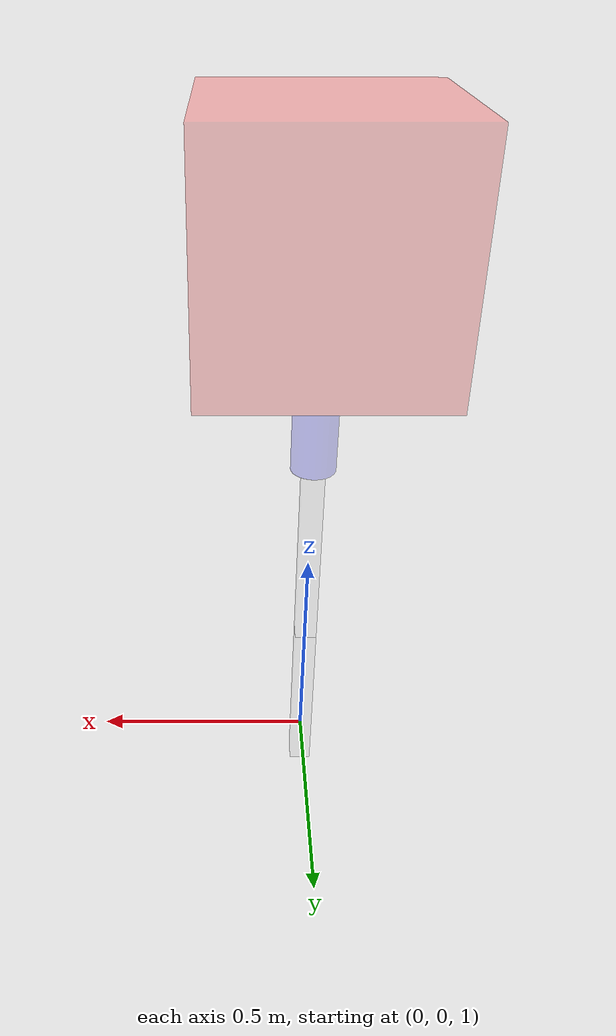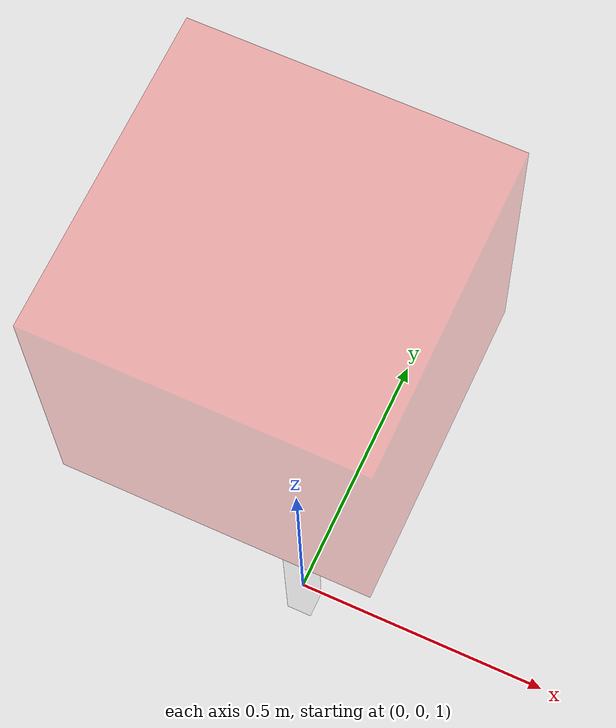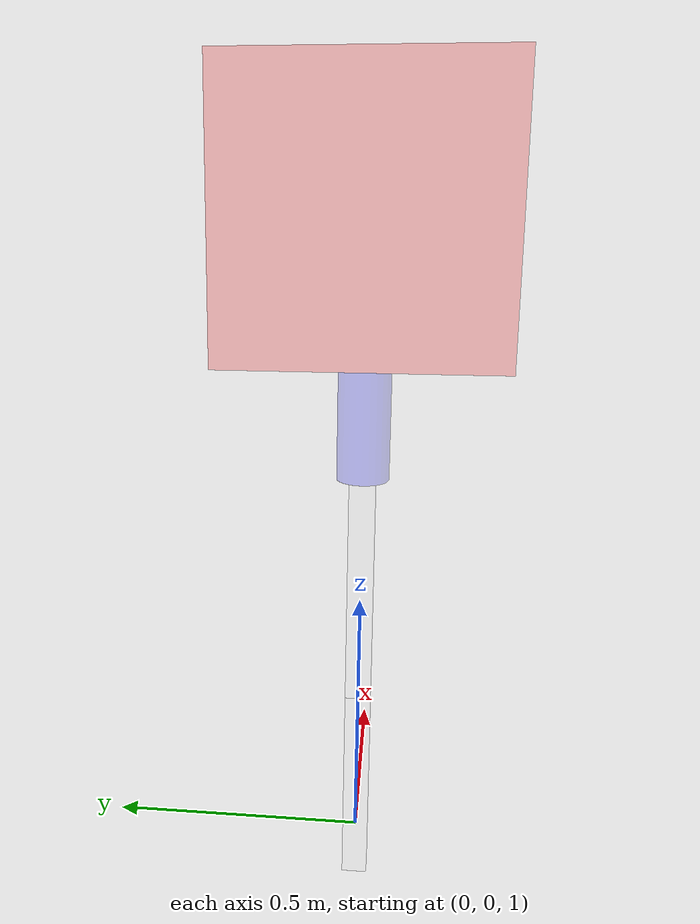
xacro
<?xml version="1.0"?>
<robot name="daniel_bot" xmlns:xacro="http://ros.org/wiki/xacro">

  <xacro:include filename="constants.xacro" />

  <!-- ****************** COORDINATES ORIGIN ***************************  -->
  <!-- Define the center of the robot -->
  <link name="world" />

  <!-- A simple fixed joint from our empty world link, to our base. -->
  <!-- The base origin is offset from the world origin. -->
  <joint name="gantry_joint" type="fixed">
    <origin xyz="0 0 2" rpy="0 0 0" />
    <parent link="world" />
    <child link="gantry_link" />
  </joint>

  <!-- ********************** GANTRY *********************************  -->
  <link name="gantry_link">
    <visual>
      <origin xyz="0 0 ${gantry_length/2} " rpy="0 0 0" />
      <geometry>
        <box size="${gantry_length} ${gantry_length} ${gantry_length}" />
      </geometry>
      <material name="red" />
    </visual>

    <collision>
      <origin xyz="0 0 ${gantry_length/2}" rpy="0 0 0" />
      <geometry>
        <box size="${gantry_length} ${gantry_length} ${gantry_length}" />
      </geometry>
    </collision>

    <xacro:box_inertia m="${gantry_mass}" w="${gantry_length}" d="${gantry_length}"
      h="${gantry_length}" z="${gantry_length/2}" />

  </link>

     <gazebo reference="gantry_link">
    <material>Gazebo/Yellow</material>
  </gazebo>

  <!-- ********************** BASE *********************************  -->
  <link name="base_link">
    <visual>
      <origin xyz="0 0 0" rpy="0 0 0" />
      <geometry>
        <cylinder length="${base_length}" radius="${base_radius}" />
      </geometry>
      <material name="blue" />
    </visual>

    <collision>
      <origin xyz="0 0 0" rpy="0 0 0" />
      <geometry>
        <cylinder length="${base_length}" radius="${base_radius}" />
      </geometry>
    </collision>

    <xacro:cylinder_inertia m="${base_mass}" r="${base_radius}" h="${base_length}" />

  </link>

  <!-- Connect the GANTRY to the BASE -->
  <joint name="base_joint" type="revolute"> <!-- WAIST -->
    <parent link="gantry_link" />
    <child link="base_link" />
    <origin xyz="0 0 ${-base_length/2}" rpy="0 0 0" />
    <limit upper="${pi}" lower="-${pi}" effort="100" velocity="100" />
    <axis xyz="0 0 1" />
  </joint>

   <gazebo reference="base_link">
    <material>Gazebo/Blue</material>
  </gazebo>

  <!-- *********************** BICEP ******************************  -->

  <link name="bicep_link">
    <visual>
      <origin xyz="0 0 ${-bicep_length/2}" rpy="0 0 0" />
      <geometry>
        <box size="${bicep_width} ${bicep_height} ${bicep_length}" />
      </geometry>
      <material name="white" />
    </visual>

    <collision>
      <origin xyz="0 0 ${-bicep_length/2}" rpy="0 0 0" />
      <geometry>
        <box size="${bicep_width} ${bicep_height} ${bicep_length}" />
      </geometry>
    </collision>

    <xacro:box_inertia m="${bicep_mass}" w="${bicep_width}" d="${bicep_length}"
      h="${bicep_height}" z="${-bicep_length/2}" /> <!-- Chequear bien cual es w d h !!!!!!!!!!!!-->

  </link>

  <gazebo reference="bicep_link">
    <material>Gazebo/Yellow</material>
  </gazebo>

  <!-- Connect the BICEP to the BASE -->
  <joint name="bicep_joint" type="revolute"> <!-- SHOULDER -->
    <parent link="base_link" />
    <child link="bicep_link" />
    <origin xyz="0 0 ${-base_length/2}" rpy="0 0 0" />
    <limit upper="${pi/2}" lower="-${pi/2}" effort="100" velocity="100" />
    <axis xyz="0 1 0" />
  </joint>

  <!-- *********************** FOREARM ******************************  -->

  <link name="forearm_link">
    <visual>
      <origin xyz="0 0 ${-forearm_length/2}" rpy="0 0 0" />
      <geometry>
        <box size="${forearm_width} ${forearm_height} ${forearm_length}" />
      </geometry>
      <material name="white" />
    </visual>

    <collision>
      <origin xyz="0 0 ${-forearm_length/2}" rpy="0 0 0" />
      <geometry>
        <box size="${forearm_width} ${forearm_height} ${forearm_length}" />
      </geometry>
    </collision>

    <xacro:box_inertia m="${forearm_mass}" w="${forearm_width}" d="${forearm_length}"
      h="${forearm_height}" z="${-forearm_length/2}" /> <!-- Chequear bien cual es w d h   !!!!!!!!!!!!-->

  </link>

  <gazebo reference="forearm_link">
    <material>Gazebo/Blue</material>
  </gazebo>

  <!-- Connect the FOREARM to the BICEP -->
  <joint name="forearm_joint" type="revolute"> <!-- ELBOW -->
    <parent link="bicep_link" />
    <child link="forearm_link" />
    <origin xyz="0 0 ${-bicep_length}" rpy="0 0 0" />
    <limit upper="${pi/2}" lower="-${pi/2}" effort="100" velocity="100" />
    <axis xyz="0 1 0" />
  </joint>

</robot>

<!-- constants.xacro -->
<robot name="daniel_bot" xmlns:xacro="http://ros.org/wiki/xacro">

    <!-- ****************** ROBOT CONSTANTS *******************************  -->
    <!-- Definition of geometry parameters -->
    <!-- Gantry -->
    <xacro:property name="gantry_length" value="0.5" /> <!-- El gantry es una caja de LxLxL -->
    <xacro:property name="gantry_mass" value="1" />

    <!-- Base -->
    <xacro:property name="base_length" value="0.25" /> <!-- El eslabon BASE es un cilindro -->
    <xacro:property name="base_radius" value="0.05" />
    <xacro:property name="base_mass" value="1" />

    <!-- Bicep -->
    <xacro:property name="bicep_length" value="0.45" /> <!-- El eslabon BICEP es una caja de WxHxL -->
    <xacro:property name="bicep_width" value="0.05" />
    <xacro:property name="bicep_height" value="0.05" />
    <xacro:property name="bicep_mass" value="1" />

    <!-- Forearm -->
    <xacro:property name="forearm_length" value="0.4" /> <!-- El eslabon FOREARM es una caja de WxHxL -->
    <xacro:property name="forearm_width" value="0.05" />
    <xacro:property name="forearm_height" value="0.05" />
    <xacro:property name="forearm_mass" value="1" />

    <!-- ****************** INERTIA *******************************  -->
    <!-- Corregir la inercia. Hay que hacer steiner -->
    <xacro:macro name="box_inertia" params="m w h d z">
        <inertial>
            <origin xyz="0 0 ${z}" rpy="${pi/2} 0 ${pi/2}" />
            <mass value="${m}" />
            <inertia ixx="${(m/12) * (h*h + d*d)}" ixy="0.0" ixz="0.0" iyy="${(m/12) * (w*w + d*d)}"
                iyz="0.0" izz="${(m/12) * (w*w + h*h)}" />
        </inertial>
    </xacro:macro>

    <xacro:macro name="cylinder_inertia" params="m r h">
        <inertial>
            <origin xyz="0 0 0" rpy="${pi/2} 0 0" />
            <mass value="${m}" />
            <inertia ixx="${(m/12) * (3*r*r + h*h)}" ixy="0" ixz="0" iyy="${(m/12) * (3*r*r + h*h)}"
                iyz="0" izz="${(m/2) * (r*r)}" />
        </inertial>
    </xacro:macro>

    <xacro:macro name="sphere_inertia" params="m r">
        <inertial>
            <mass value="${m}" />
            <inertia ixx="${(2/5) * m * (r*r)}" ixy="0.0" ixz="0.0" iyy="${(2/5) * m * (r*r)}"
                iyz="0.0"
                izz="${(2/5) * m * (r*r)}" />
        </inertial>
    </xacro:macro>

    <!-- ****************** COLOR *******************************  -->
    <xacro:property name="alpha" value="0.25" /> <!-- transparencia -->

    <material name="red">
        <color rgba="${255/255} ${0/255} ${0/255} ${alpha}" />
    </material>

    <material name="blue">
        <color rgba="${0/255} ${0/255} ${255/255} ${alpha}" />
    </material>

    <material name="white">
        <color rgba="${255/255} ${255/255} ${255/255} ${alpha}" />
    </material>

</robot>
